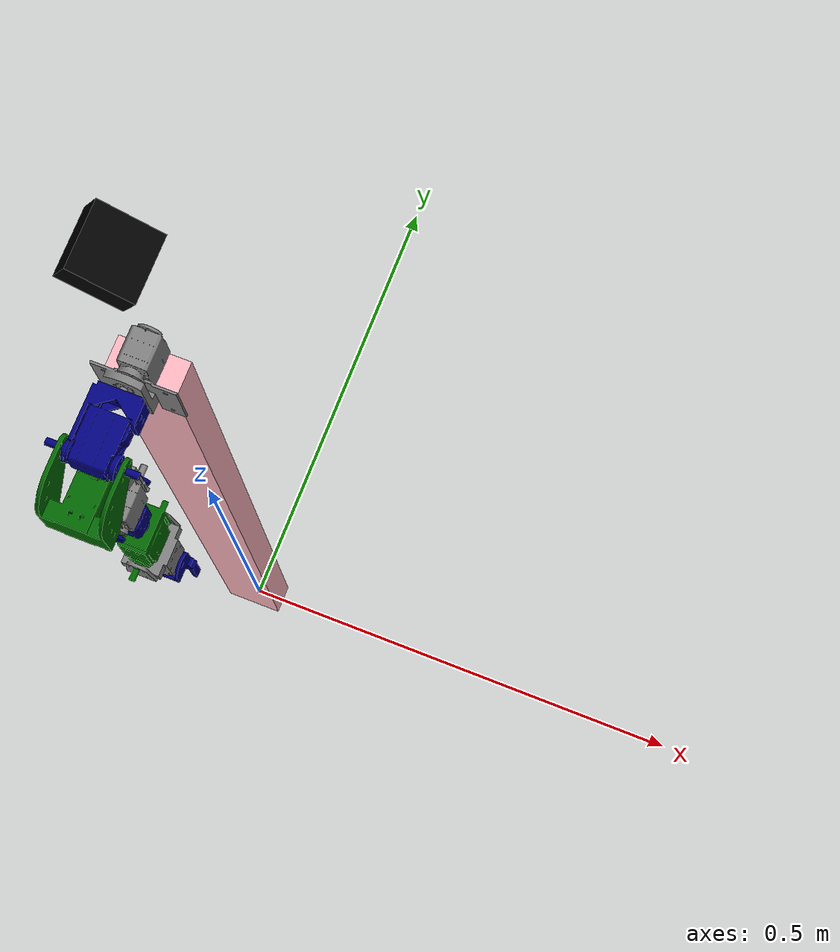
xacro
<?xml version="1.0"?>
<robot xmlns:xacro="http://www.ros.org/wiki/xacro" name="poc_v2">

  <!-- Robot geometry + joints -->
  <xacro:include filename="$(find poc_v2)/urdf/camera_rgbd.xacro"/>
  <xacro:include filename="$(find poc_v2)/urdf/poc_arm_sim.urdf.xacro"/>

  <xacro:rgbd_camera
    parent="torso_link"
    xyz="0.015 0 1.15"
    rpy="0 0.45 0"/>

  <!-- ros2_control for Gazebo -->
  <xacro:include filename="poc_v2.ros2_control.xacro" />

  <!-- Instantiate ros2_control system -->
  <xacro:poc_v2_ros2_control_gazebo name="GazeboSystem"/>

  <!-- Gazebo ros2_control plugin -->
  <gazebo>
    <plugin name="gazebo_ros2_control" filename="libgazebo_ros2_control.so">
      <parameters>
        $(find poc_v2_moveit)/config/ros2_controllers.yaml
      </parameters>
    </plugin>
  </gazebo>

</robot>

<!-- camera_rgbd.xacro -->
<robot xmlns:xacro="http://www.ros.org/wiki/xacro">

  <xacro:macro name="rgbd_camera" params="parent xyz rpy">

    <!-- Materials -->
    <material name="kala">
      <color rgba="0 0 0 1"/>
    </material>

    <!-- Camera mounting link -->
    <link name="camera_link">
      <inertial>
        <origin xyz="0 0 0" rpy="0 0 0"/>
        <mass value="0.3"/>
        <inertia
          ixx="0.0005"
          iyy="0.0005"
          izz="0.0005"
          ixy="0" ixz="0" iyz="0"/>
      </inertial>

      <visual>
        <geometry>
          <box size="0.05 0.05 0.03"/>
        </geometry>
        <material name="kala"/>
      </visual>

      <collision>
        <geometry>
          <box size="0.05 0.05 0.03"/>
        </geometry>
      </collision>
    </link>

    <!-- Optical frame link -->
    <link name="camera_frame_link"/>

    <!-- Parent → camera_link -->
    <joint name="head_to_camera_link" type="fixed">
      <parent link="${parent}"/>
      <child link="camera_link"/>
      <origin xyz="${xyz}" rpy="${rpy}"/>
    </joint>

    <!-- camera_link → camera_frame_link (REP-103 optical frame) -->
    <joint name="camera_link_to_camera_frame_link" type="fixed">
      <parent link="camera_link"/>
      <child link="camera_frame_link"/>
      <origin xyz="0 0 0" rpy="-1.57 0 -1.57"/>
    </joint>

    <!-- Gazebo RGB-D sensor -->
    <xacro:if value="true">
      <gazebo reference="camera_link">
        <sensor name="camera" type="depth">
          <pose>0 0 0 0 0 0</pose>
          <visualize>true</visualize>
          <update_rate>5</update_rate>

          <camera>
            <horizontal_fov>2</horizontal_fov>
            <image>
              <format>R8G8B8</format>
              <width>640</width>
              <height>480</height>
            </image>
            <clip>
              <near>0.2</near>
              <far>5</far>
            </clip>
          </camera>

          <plugin name="depth_camera" filename="libgazebo_ros_camera.so">
            <!-- Optical frame -->
            <frame_name>camera_frame_link</frame_name>
          </plugin>
        </sensor>
      </gazebo>
    </xacro:if>

  </xacro:macro>

</robot>

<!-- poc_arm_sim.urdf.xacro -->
<robot xmlns:xacro="http://www.ros.org/wiki/xacro" name="poc_v2">

  <material name="grey">
      <color rgba="0.5 0.5 0.5 1" />
  </material>

  <material name="blue">
      <color rgba="0 0 0.5 1" />
  </material>

  <material name="green">
      <color rgba="0 0.4 0 1" />
  </material>

  <!-- Torso / base box -->
  <!-- Torso / base box -->
  <link name="torso_link">
    <inertial>
      <origin xyz="0 0 0.45" rpy="0 0 0"/>
      <mass value="2500"/>
      <inertia
        ixx="2" ixy="2" ixz="2"
        iyy="2" iyz="2"
        izz="2"/>
    </inertial>

    <visual>
      <origin xyz="0 0 0.45" rpy="0 0 0"/>
      <geometry>
        <!-- size = X Y Z -->
        <box size="0.06 0.03 0.89"/>
      </geometry>
      <material name="torso_color">
        <color rgba="1 0.71 0.75 1"/>
      </material>
    </visual>

    <collision>
      <origin xyz="0 0 0.45" rpy="0 0 0"/>
      <geometry>
        <box size="0.06 0.03 0.89"/>
      </geometry>
    </collision>
  </link>

  <link
    name="shoulder_base_link">
    <inertial>
      <origin
        xyz="9.7487E-05 -0.0077102 -0.018086"
        rpy="0 0 0" />
      <mass
        value="0.065158" />
      <inertia
        ixx="1.3277E-05"
        ixy="3.3229E-10"
        ixz="4.3851E-09"
        iyy="1.8778E-05"
        iyz="2.5265E-07"
        izz="7.015E-06" />
    </inertial>
    <visual>
      <origin
        xyz="0 0 0"
        rpy="0 0 0" />
      <geometry>
        <mesh
          filename="file:///home/suvi/poc_arm/install/poc_v2/share/poc_v2/meshes/shoulder_base_link.STL" />
      </geometry>
      <material name="grey"/>
    </visual>
    <collision>
      <origin
        xyz="0 0 0"
        rpy="0 0 0" />
      <geometry>
        <mesh
          filename="file:///home/suvi/poc_arm/install/poc_v2/share/poc_v2/meshes/shoulder_base_link.STL" />
      </geometry>
    </collision>
  </link>

  <!-- torso -> shoulder_base_link fixed -->
  <joint name="torso_to_shoulder_base" type="fixed">
    <parent link="torso_link"/>
    <child link="shoulder_base_link"/>
    <!-- adjust this offset to place your arm on top of torso -->
    <origin xyz="0 0 0.93" rpy="0 0 0"/>
  </joint>

  <link
    name="shoulder_pitch_link">
    <inertial>
      <origin
        xyz="-4.3944E-05 -0.027448 -0.00011001"
        rpy="0 0 0" />
      <mass
        value="0.058226" />
      <inertia
        ixx="9.1701E-06"
        ixy="4.611E-09"
        ixz="-3.6339E-10"
        iyy="4.5864E-06"
        iyz="-1.102E-09"
        izz="8.3506E-06" />
    </inertial>
    <visual>
      <origin
        xyz="0 0 0"
        rpy="0 0 0" />
      <geometry>
        <mesh
          filename="file:///home/suvi/poc_arm/install/poc_v2/share/poc_v2/meshes/shoulder_pitch_link.STL" />
      </geometry>
      <material name="blue"/>
    </visual>
    <collision>
      <origin
        xyz="0 0 0"
        rpy="0 0 0" />
      <geometry>
        <mesh
          filename="file:///home/suvi/poc_arm/install/poc_v2/share/poc_v2/meshes/shoulder_pitch_link.STL" />
      </geometry>
    </collision>
  </link>
  <joint
    name="shoulder_pitch_joint"
    type="revolute">
    <origin
      xyz="0 -0.039425 0"
      rpy="0 0 0" />
    <parent
      link="shoulder_base_link" />
    <child
      link="shoulder_pitch_link" />
    <axis
      xyz="0 -1 0" />
    <limit
      lower="-1.5708"
      upper="1.5708"
      effort="3"
      velocity="4.7124" />
  </joint>
  <link
    name="shoulder_yaw_link">
    <inertial>
      <origin
        xyz="4.1777E-05 -0.022349 -0.037122"
        rpy="0 0 0" />
      <mass
        value="0.07816" />
      <inertia
        ixx="1.7538E-05"
        ixy="1.1171E-09"
        ixz="-6.0564E-10"
        iyy="1.2384E-05"
        iyz="-2.1123E-06"
        izz="1.5499E-05" />
    </inertial>
    <visual>
      <origin
        xyz="0 0 0"
        rpy="0 0 0" />
      <geometry>
        <mesh
          filename="file:///home/suvi/poc_arm/install/poc_v2/share/poc_v2/meshes/shoulder_yaw_link.STL" />
      </geometry>
      <material name="green"/>
    </visual>
    <collision>
      <origin
        xyz="0 0 0"
        rpy="0 0 0" />
      <geometry>
        <mesh
          filename="file:///home/suvi/poc_arm/install/poc_v2/share/poc_v2/meshes/shoulder_yaw_link.STL" />
      </geometry>
    </collision>
  </link>
  <joint
    name="shoulder_yaw_joint"
    type="revolute">
    <origin
      xyz="0 -0.047424 0"
      rpy="0 0 0" />
    <parent
      link="shoulder_pitch_link" />
    <child
      link="shoulder_yaw_link" />
    <axis
      xyz="-1 0 0" />
    <limit
      lower="-1.5708"
      upper="1.5708"
      effort="3"
      velocity="4.7124" />
  </joint>
  <link
    name="shoulder_roll_link">
    <inertial>
      <origin
        xyz="0.00010503 -6.0033E-06 -0.046163"
        rpy="0 0 0" />
      <mass
        value="0.062029" />
      <inertia
        ixx="1.0247E-05"
        ixy="-7.3826E-10"
        ixz="1.2386E-09"
        iyy="1.1268E-05"
        iyz="-4.5936E-09"
        izz="4.7933E-06" />
    </inertial>
    <visual>
      <origin
        xyz="0 0 0"
        rpy="0 0 0" />
      <geometry>
        <mesh
          filename="file:///home/suvi/poc_arm/install/poc_v2/share/poc_v2/meshes/shoulder_roll_link.STL" />
      </geometry>
      <material name="grey"/>
    </visual>
    <collision>
      <origin
        xyz="0 0 0"
        rpy="0 0 0" />
      <geometry>
        <mesh
          filename="file:///home/suvi/poc_arm/install/poc_v2/share/poc_v2/meshes/shoulder_roll_link.STL" />
      </geometry>
    </collision>
  </link>
  <joint
    name="shoulder_roll_joint"
    type="revolute">
    <origin
      xyz="0.000125 0 -0.08105"
      rpy="0 0 0" />
    <parent
      link="shoulder_yaw_link" />
    <child
      link="shoulder_roll_link" />
    <axis
      xyz="0 0 -1" />
    <limit
      lower="-3.1416"
      upper="3.1416"
      effort="3"
      velocity="4.7124" />
  </joint>
  <link
    name="elbow_pitch_link">
    <inertial>
      <origin
        xyz="-0.022349 -4.1658E-05 -0.03471"
        rpy="0 0 0" />
      <mass
        value="0.07816" />
      <inertia
        ixx="1.2384E-05"
        ixy="-1.0321E-09"
        ixz="-2.112E-06"
        iyy="1.7538E-05"
        iyz="6.7704E-10"
        izz="1.5499E-05" />
    </inertial>
    <visual>
      <origin
        xyz="0 0 0"
        rpy="0 0 0" />
      <geometry>
        <mesh
          filename="file:///home/suvi/poc_arm/install/poc_v2/share/poc_v2/meshes/elbow_pitch_link.STL" />
      </geometry>
      <material name="blue"/>
    </visual>
    <collision>
      <origin
        xyz="0 0 0"
        rpy="0 0 0" />
      <geometry>
        <mesh
          filename="file:///home/suvi/poc_arm/install/poc_v2/share/poc_v2/meshes/elbow_pitch_link.STL" />
      </geometry>
    </collision>
  </link>
  <joint
    name="elbow_pitch_joint"
    type="revolute">
    <origin
      xyz="0 0 -0.072424"
      rpy="0 0 0" />
    <parent
      link="shoulder_roll_link" />
    <child
      link="elbow_pitch_link" />
    <axis
      xyz="0 1 0" />
    <limit
      lower="-1.5708"
      upper="1.5708"
      effort="3"
      velocity="4.7124" />
  </joint>
  <link
    name="wrist_roll_link">
    <inertial>
      <origin
        xyz="-0.0001094 0.00049455 -0.027472"
        rpy="0 0 0" />
      <mass
        value="0.059835" />
      <inertia
        ixx="8.7489E-06"
        ixy="-2.3214E-10"
        ixz="-1.1318E-09"
        iyy="9.6573E-06"
        iyz="4.6966E-09"
        izz="4.6776E-06" />
    </inertial>
    <visual>
      <origin
        xyz="0 0 0"
        rpy="0 0 0" />
      <geometry>
        <mesh
          filename="file:///home/suvi/poc_arm/install/poc_v2/share/poc_v2/meshes/wrist_roll_link.STL" />
      </geometry>
      <material name="green"/>
    </visual>
    <collision>
      <origin
        xyz="0 0 0"
        rpy="0 0 0" />
      <geometry>
        <mesh
          filename="file:///home/suvi/poc_arm/install/poc_v2/share/poc_v2/meshes/wrist_roll_link.STL" />
      </geometry>
    </collision>
  </link>
  <joint
    name="wrist_roll_joint"
    type="revolute">
    <origin
      xyz="0 -0.000125 -0.07805"
      rpy="0 0 0" />
    <parent
      link="elbow_pitch_link" />
    <child
      link="wrist_roll_link" />
    <axis
      xyz="0 0 -1" />
    <limit
      lower="-3.1416"
      upper="3.1416"
      effort="3"
      velocity="4.7124" />
  </joint>
  <link
    name="wrist_pitch_link">
    <inertial>
      <origin
        xyz="-1.2164E-05 -0.00021517 -0.040822"
        rpy="0 0 0" />
      <mass
        value="0.065136" />
      <inertia
        ixx="1.2184E-05"
        ixy="3.7721E-10"
        ixz="-3.5858E-09"
        iyy="9.7713E-06"
        iyz="-1.0653E-09"
        izz="7.7058E-06" />
    </inertial>
    <visual>
      <origin
        xyz="0 0 0"
        rpy="0 0 0" />
      <geometry>
        <mesh
          filename="file:///home/suvi/poc_arm/install/poc_v2/share/poc_v2/meshes/wrist_pitch_link.STL" />
      </geometry>
      <material name="grey"/>
    </visual>
    <collision>
      <origin
        xyz="0 0 0"
        rpy="0 0 0" />
      <geometry>
        <mesh
          filename="file:///home/suvi/poc_arm/install/poc_v2/share/poc_v2/meshes/wrist_pitch_link.STL" />
      </geometry>
    </collision>
  </link>
  <joint
    name="wrist_pitch_joint"
    type="revolute">
    <origin
      xyz="0 0 -0.047424"
      rpy="0 0 0" />
    <parent
      link="wrist_roll_link" />
    <child
      link="wrist_pitch_link" />
    <axis
      xyz="0 -1 0" />
    <limit
      lower="-1.5708"
      upper="1.5708"
      effort="3"
      velocity="4.7124" />
  </joint>
  <link
    name="wrist_yaw_link">
    <inertial>
      <origin
        xyz="-0.00134389225503382 0.00410515462928857 -0.0264402444455359"
        rpy="0 0 0" />
      <mass
        value="0.0153733484376505" />
      <inertia
        ixx="2.23369482968237E-06"
        ixy="-6.06138545788461E-10"
        ixz="3.24772205878924E-07"
        iyy="4.98261144688796E-06"
        iyz="4.19349180435978E-08"
        izz="3.59994172004044E-06" />
    </inertial>
    <visual>
      <origin
        xyz="0 0 0"
        rpy="0 0 0" />
      <geometry>
        <mesh
          filename="file:///home/suvi/poc_arm/install/poc_v2/share/poc_v2/meshes/wrist_yaw_link.STL" />
      </geometry>
      <material name="blue"/>
    </visual>
    <collision>
      <origin
        xyz="0 0 0"
        rpy="0 0 0" />
      <geometry>
        <mesh
          filename="file:///home/suvi/poc_arm/install/poc_v2/share/poc_v2/meshes/wrist_yaw_link.STL" />
      </geometry>
    </collision>
  </link>
  <joint
    name="wrist_yaw_joint"
    type="revolute">
    <origin
      xyz="0 -0.000125 -0.064924"
      rpy="0 0 0" />
    <parent
      link="wrist_pitch_link" />
    <child
      link="wrist_yaw_link" />
    <axis
      xyz="-1 0 0" />
    <limit
      lower="-1.5708"
      upper="1.5708"
      effort="3"
      velocity="4.7124" />
  </joint>

  <gazebo reference="torso_link">
      <material>Gazebo/White</material>
  </gazebo>

  <gazebo reference="camera_link">
      <material>Gazebo/Black</material>
  </gazebo>

  <gazebo reference="shoulder_base_link">
      <material>Gazebo/Grey</material>
  </gazebo>

  <gazebo reference="shoulder_pitch_link">
      <material>Gazebo/Blue</material>
  </gazebo>

  <gazebo reference="shoulder_yaw_link">
      <material>Gazebo/Green</material>
  </gazebo>

  <gazebo reference="shoulder_roll_link">
      <material>Gazebo/Yellow</material>
  </gazebo>

  <gazebo reference="elbow_link">
      <material>Gazebo/Blue</material>
  </gazebo>

  <gazebo reference="wrist_yaw_link">
      <material>Gazebo/Green</material>
  </gazebo>

  <gazebo reference="wrist_pitch_link">
      <material>Gazebo/Grey</material>
  </gazebo>

  <gazebo reference="wrist_roll_link">
      <material>Gazebo/Red</material>
  </gazebo>

</robot>
